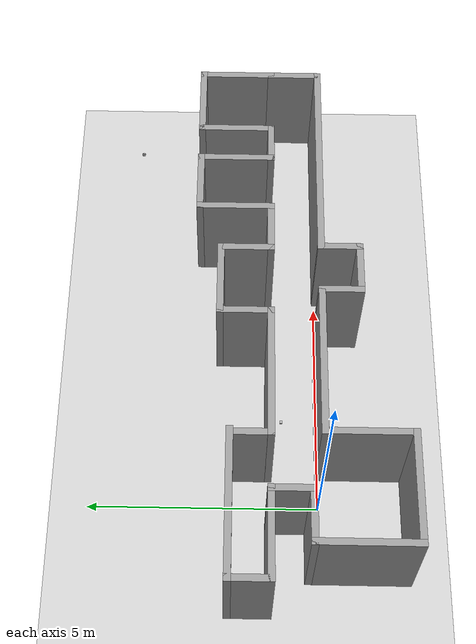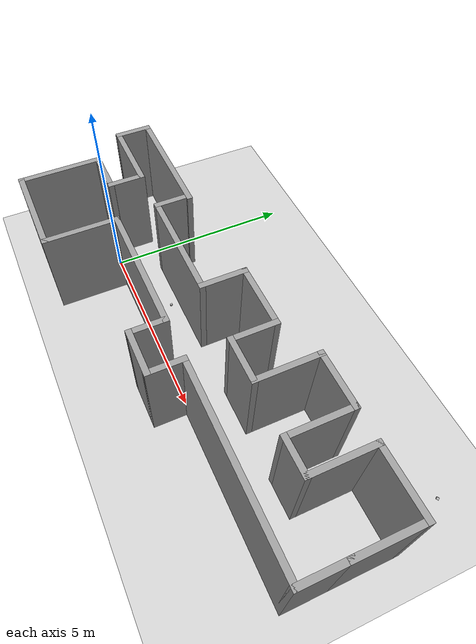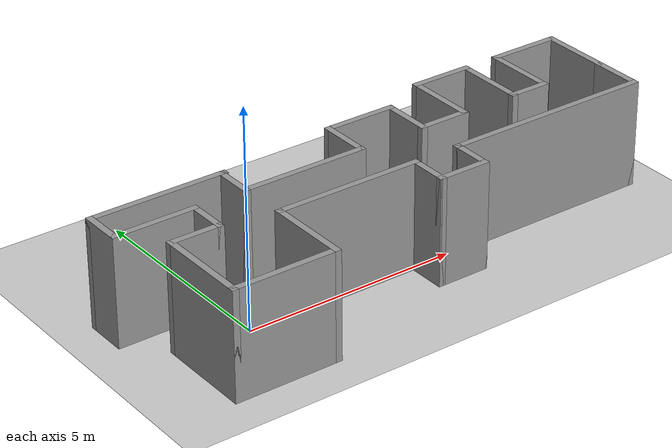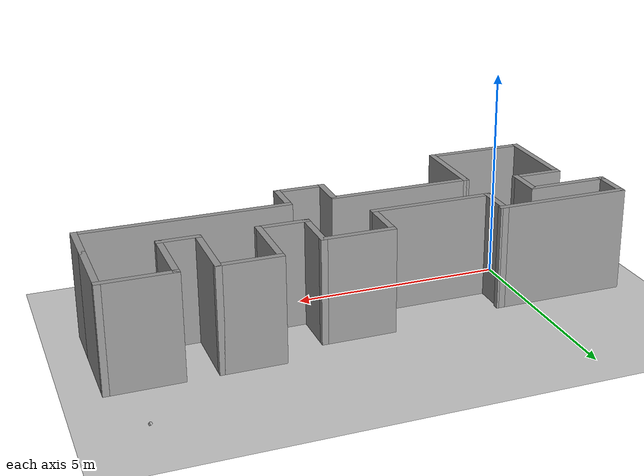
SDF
<sdf version="1.6">
 <world name="default">
  <light name="sun" type="directional">
   <pose>0 0 10 0 -0 0</pose>
   <diffuse>0.8 0.8 0.8 1</diffuse>
   <specular>0.1 0.1 0.1 1</specular>
   <attenuation>
    <range>1000</range>
    <constant>0.9</constant>
    <linear>0.01</linear>
    <quadratic>0.001</quadratic>
   </attenuation>
   <direction>-0.5 0.5 -1</direction>
  </light>
  <model name="ground_plane">
   <static>1</static>
   <link name="link">
    <collision name="collision">
     <geometry><plane><normal>0 0 1</normal><size>100 100</size></plane></geometry>
     <surface><friction><ode><mu>100</mu><mu2>50</mu2></ode></friction></surface>
    </collision>
    <visual name="visual">
     <cast_shadows>0</cast_shadows>
     <geometry><plane><normal>0 0 1</normal><size>100 100</size></plane></geometry>
     <material>
      <script><uri>file://media/materials/scripts/gazebo.material</uri><name>Gazebo/Grey</name></script>
     </material>
    </visual>
   </link>
  </model>
  <gravity>0 0 -9.8</gravity>
  <magnetic_field>6e-06 2.3e-05 -4.2e-05</magnetic_field>
  <atmosphere type="adiabatic"/>
  <physics name="default_physics" default="0" type="ode">
   <max_step_size>0.001</max_step_size>
   <real_time_factor>1</real_time_factor>
   <real_time_update_rate>1000</real_time_update_rate>
  </physics>
  <scene><ambient>0.4 0.4 0.4 1</ambient><background>0.7 0.7 0.7 1</background><shadows>1</shadows></scene>
  <spherical_coordinates>
   <surface_model>EARTH_WGS84</surface_model>
   <latitude_deg>0</latitude_deg>
   <longitude_deg>0</longitude_deg>
   <elevation>0</elevation>
   <heading_deg>0</heading_deg>
  </spherical_coordinates>
  <model name="Yiping_apt">
   <pose>3.8681 0.406021 0 0 -0 0</pose>
   <link name="Wall_0">
    <collision name="Wall_0_Collision">
     <geometry><box><size>3.25 0.15 2.5</size></box></geometry>
     <pose>0 0 1.25 0 -0 0</pose>
    </collision>
    <visual name="Wall_0_Visual">
     <pose>0 0 1.25 0 -0 0</pose>
     <geometry><box><size>3.25 0.15 2.5</size></box></geometry>
     <material>
      <script><uri>file://media/materials/scripts/gazebo.material</uri><name>Gazebo/Grey</name></script>
      <ambient>1 1 1 1</ambient>
     </material>
    </visual>
    <pose>-4.65 1.525 0 0 -0 3.14159</pose>
   </link>
   <link name="Wall_1">
    <collision name="Wall_1_Collision">
     <geometry><box><size>1 0.15 2.5</size></box></geometry>
     <pose>0 0 1.25 0 -0 0</pose>
    </collision>
    <visual name="Wall_1_Visual">
     <pose>0 0 1.25 0 -0 0</pose>
     <geometry><box><size>1 0.15 2.5</size></box></geometry>
     <material>
      <script><uri>file://media/materials/scripts/gazebo.material</uri><name>Gazebo/Grey</name></script>
      <ambient>1 1 1 1</ambient>
     </material>
    </visual>
    <pose>-6.2 1.1 0 0 0 -1.5708</pose>
   </link>
   <link name="Wall_10">
    <collision name="Wall_10_Collision">
     <geometry><box><size>1.25 0.15 2.5</size></box></geometry>
     <pose>0 0 1.25 0 -0 0</pose>
    </collision>
    <visual name="Wall_10_Visual">
     <pose>0 0 1.25 0 -0 0</pose>
     <geometry><box><size>1.25 0.15 2.5</size></box></geometry>
     <material>
      <script><uri>file://media/materials/scripts/gazebo.material</uri><name>Gazebo/Grey</name></script>
      <ambient>1 1 1 1</ambient>
     </material>
    </visual>
    <pose>0.8 -1.275 0 0 -0 0</pose>
   </link>
   <link name="Wall_11">
    <collision name="Wall_11_Collision">
     <geometry><box><size>1 0.15 2.5</size></box></geometry>
     <pose>0 0 1.25 0 -0 0</pose>
    </collision>
    <visual name="Wall_11_Visual">
     <pose>0 0 1.25 0 -0 0</pose>
     <geometry><box><size>1 0.15 2.5</size></box></geometry>
     <material>
      <script><uri>file://media/materials/scripts/gazebo.material</uri><name>Gazebo/Grey</name></script>
      <ambient>1 1 1 1</ambient>
     </material>
    </visual>
    <pose>1.35 -0.85 0 0 -0 1.5708</pose>
   </link>
   <link name="Wall_12">
    <collision name="Wall_12_Collision">
     <geometry><box><size>5 0.15 2.5</size></box></geometry>
     <pose>0 0 1.25 0 -0 0</pose>
    </collision>
    <visual name="Wall_12_Visual">
     <pose>0 0 1.25 0 -0 0</pose>
     <geometry><box><size>5 0.15 2.5</size></box></geometry>
     <material>
      <script><uri>file://media/materials/scripts/gazebo.material</uri><name>Gazebo/Grey</name></script>
      <ambient>1 1 1 1</ambient>
     </material>
    </visual>
    <pose>3.775 -0.425 0 0 -0 0</pose>
   </link>
   <link name="Wall_13">
    <collision name="Wall_13_Collision">
     <geometry><box><size>1.25 0.15 2.5</size></box></geometry>
     <pose>0 0 1.25 0 -0 0</pose>
    </collision>
    <visual name="Wall_13_Visual">
     <pose>0 0 1.25 0 -0 0</pose>
     <geometry><box><size>1.25 0.15 2.5</size></box></geometry>
     <material>
      <script><uri>file://media/materials/scripts/gazebo.material</uri><name>Gazebo/Grey</name></script>
      <ambient>1 1 1 1</ambient>
     </material>
    </visual>
    <pose>6.2 0.125 0 0 -0 1.5708</pose>
   </link>
   <link name="Wall_14">
    <collision name="Wall_14_Collision">
     <geometry><box><size>1.75 0.15 2.5</size></box></geometry>
     <pose>0 0 1.25 0 -0 0</pose>
    </collision>
    <visual name="Wall_14_Visual">
     <pose>0 0 1.25 0 -0 0</pose>
     <geometry><box><size>1.75 0.15 2.5</size></box></geometry>
     <material>
      <script><uri>file://media/materials/scripts/gazebo.material</uri><name>Gazebo/Grey</name></script>
      <ambient>1 1 1 1</ambient>
     </material>
    </visual>
    <pose>6.2 1.475 0 0 -0 1.5708</pose>
   </link>
   <link name="Wall_15">
    <collision name="Wall_15_Collision">
     <geometry><box><size>1.75 0.15 2.5</size></box></geometry>
     <pose>0 0 1.25 0 -0 0</pose>
    </collision>
    <visual name="Wall_15_Visual">
     <pose>0 0 1.25 0 -0 0</pose>
     <geometry><box><size>1.75 0.15 2.5</size></box></geometry>
     <material>
      <script><uri>file://media/materials/scripts/gazebo.material</uri><name>Gazebo/Grey</name></script>
      <ambient>1 1 1 1</ambient>
     </material>
    </visual>
    <pose>5.4 2.275 0 0 -0 3.14159</pose>
   </link>
   <link name="Wall_16">
    <collision name="Wall_16_Collision">
     <geometry><box><size>1.75 0.15 2.5</size></box></geometry>
     <pose>0 0 1.25 0 -0 0</pose>
    </collision>
    <visual name="Wall_16_Visual">
     <pose>0 0 1.25 0 -0 0</pose>
     <geometry><box><size>1.75 0.15 2.5</size></box></geometry>
     <material>
      <script><uri>file://media/materials/scripts/gazebo.material</uri><name>Gazebo/Grey</name></script>
      <ambient>1 1 1 1</ambient>
     </material>
    </visual>
    <pose>4.6 1.475 0 0 0 -1.5708</pose>
   </link>
   <link name="Wall_17">
    <collision name="Wall_17_Collision">
     <geometry><box><size>1 0.15 2.5</size></box></geometry>
     <pose>0 0 1.25 0 -0 0</pose>
    </collision>
    <visual name="Wall_17_Visual">
     <pose>0 0 1.25 0 -0 0</pose>
     <geometry><box><size>1 0.15 2.5</size></box></geometry>
     <material>
      <script><uri>file://media/materials/scripts/gazebo.material</uri><name>Gazebo/Grey</name></script>
      <ambient>1 1 1 1</ambient>
     </material>
    </visual>
    <pose>4.175 0.675 0 0 -0 3.14159</pose>
   </link>
   <link name="Wall_18">
    <collision name="Wall_18_Collision">
     <geometry><box><size>1.75 0.15 2.5</size></box></geometry>
     <pose>0 0 1.25 0 -0 0</pose>
    </collision>
    <visual name="Wall_18_Visual">
     <pose>0 0 1.25 0 -0 0</pose>
     <geometry><box><size>1.75 0.15 2.5</size></box></geometry>
     <material>
      <script><uri>file://media/materials/scripts/gazebo.material</uri><name>Gazebo/Grey</name></script>
      <ambient>1 1 1 1</ambient>
     </material>
    </visual>
    <pose>3.75 1.475 0 0 -0 1.5708</pose>
   </link>
   <link name="Wall_19">
    <collision name="Wall_19_Collision">
     <geometry><box><size>1.5 0.15 2.5</size></box></geometry>
     <pose>0 0 1.25 0 -0 0</pose>
    </collision>
    <visual name="Wall_19_Visual">
     <pose>0 0 1.25 0 -0 0</pose>
     <geometry><box><size>1.5 0.15 2.5</size></box></geometry>
     <material>
      <script><uri>file://media/materials/scripts/gazebo.material</uri><name>Gazebo/Grey</name></script>
      <ambient>1 1 1 1</ambient>
     </material>
    </visual>
    <pose>3.075 2.275 0 0 -0 3.14159</pose>
   </link>
   <link name="Wall_2">
    <collision name="Wall_2_Collision">
     <geometry><box><size>2 0.15 2.5</size></box></geometry>
     <pose>0 0 1.25 0 -0 0</pose>
    </collision>
    <visual name="Wall_2_Visual">
     <pose>0 0 1.25 0 -0 0</pose>
     <geometry><box><size>2 0.15 2.5</size></box></geometry>
     <material>
      <script><uri>file://media/materials/scripts/gazebo.material</uri><name>Gazebo/Grey</name></script>
      <ambient>1 1 1 1</ambient>
     </material>
    </visual>
    <pose>-5.275 0.675 0 0 -0 0</pose>
   </link>
   <link name="Wall_20">
    <collision name="Wall_20_Collision">
     <geometry><box><size>1.75 0.15 2.5</size></box></geometry>
     <pose>0 0 1.25 0 -0 0</pose>
    </collision>
    <visual name="Wall_20_Visual">
     <pose>0 0 1.25 0 -0 0</pose>
     <geometry><box><size>1.75 0.15 2.5</size></box></geometry>
     <material>
      <script><uri>file://media/materials/scripts/gazebo.material</uri><name>Gazebo/Grey</name></script>
      <ambient>1 1 1 1</ambient>
     </material>
    </visual>
    <pose>2.4 1.475 0 0 0 -1.5708</pose>
   </link>
   <link name="Wall_21">
    <collision name="Wall_21_Collision">
     <geometry><box><size>1.25 0.15 2.5</size></box></geometry>
     <pose>0 0 1.25 0 -0 0</pose>
    </collision>
    <visual name="Wall_21_Visual">
     <pose>0 0 1.25 0 -0 0</pose>
     <geometry><box><size>1.25 0.15 2.5</size></box></geometry>
     <material>
      <script><uri>file://media/materials/scripts/gazebo.material</uri><name>Gazebo/Grey</name></script>
      <ambient>1 1 1 1</ambient>
     </material>
    </visual>
    <pose>1.85 0.675 0 0 -0 3.14159</pose>
   </link>
   <link name="Wall_22">
    <collision name="Wall_22_Collision">
     <geometry><box><size>1.25 0.15 2.5</size></box></geometry>
     <pose>0 0 1.25 0 -0 0</pose>
    </collision>
    <visual name="Wall_22_Visual">
     <pose>0 0 1.25 0 -0 0</pose>
     <geometry><box><size>1.25 0.15 2.5</size></box></geometry>
     <material>
      <script><uri>file://media/materials/scripts/gazebo.material</uri><name>Gazebo/Grey</name></script>
      <ambient>1 1 1 1</ambient>
     </material>
    </visual>
    <pose>1.3 1.225 0 0 -0 1.5708</pose>
   </link>
   <link name="Wall_23">
    <collision name="Wall_23_Collision">
     <geometry><box><size>1.75 0.15 2.5</size></box></geometry>
     <pose>0 0 1.25 0 -0 0</pose>
    </collision>
    <visual name="Wall_23_Visual">
     <pose>0 0 1.25 0 -0 0</pose>
     <geometry><box><size>1.75 0.15 2.5</size></box></geometry>
     <material>
      <script><uri>file://media/materials/scripts/gazebo.material</uri><name>Gazebo/Grey</name></script>
      <ambient>1 1 1 1</ambient>
     </material>
    </visual>
    <pose>0.5 1.775 0 0 -0 3.14159</pose>
   </link>
   <link name="Wall_24">
    <collision name="Wall_24_Collision">
     <geometry><box><size>1.25 0.15 2.5</size></box></geometry>
     <pose>0 0 1.25 0 -0 0</pose>
    </collision>
    <visual name="Wall_24_Visual">
     <pose>0 0 1.25 0 -0 0</pose>
     <geometry><box><size>1.25 0.15 2.5</size></box></geometry>
     <material>
      <script><uri>file://media/materials/scripts/gazebo.material</uri><name>Gazebo/Grey</name></script>
      <ambient>1 1 1 1</ambient>
     </material>
    </visual>
    <pose>-0.3 1.225 0 0 0 -1.5708</pose>
   </link>
   <link name="Wall_25">
    <collision name="Wall_25_Collision">
     <geometry><box><size>3 0.15 2.5</size></box></geometry>
     <pose>0 0 1.25 0 -0 0</pose>
    </collision>
    <visual name="Wall_25_Visual">
     <pose>0 0 1.25 0 -0 0</pose>
     <geometry><box><size>3 0.15 2.5</size></box></geometry>
     <material>
      <script><uri>file://media/materials/scripts/gazebo.material</uri><name>Gazebo/Grey</name></script>
      <ambient>1 1 1 1</ambient>
     </material>
    </visual>
    <pose>-1.725 0.675 0 0 -0 3.14159</pose>
   </link>
   <link name="Wall_26">
    <collision name="Wall_26_Collision">
     <geometry><box><size>1 0.15 2.5</size></box></geometry>
     <pose>0 0 1.25 0 -0 0</pose>
    </collision>
    <visual name="Wall_26_Visual">
     <pose>0 0 1.25 0 -0 0</pose>
     <geometry><box><size>1 0.15 2.5</size></box></geometry>
     <material>
      <script><uri>file://media/materials/scripts/gazebo.material</uri><name>Gazebo/Grey</name></script>
      <ambient>1 1 1 1</ambient>
     </material>
    </visual>
    <pose>-3.15 1.1 0 0 -0 1.5708</pose>
   </link>
   <link name="Wall_3">
    <collision name="Wall_3_Collision">
     <geometry><box><size>1 0.15 2.5</size></box></geometry>
     <pose>0 0 1.25 0 -0 0</pose>
    </collision>
    <visual name="Wall_3_Visual">
     <pose>0 0 1.25 0 -0 0</pose>
     <geometry><box><size>1 0.15 2.5</size></box></geometry>
     <material>
      <script><uri>file://media/materials/scripts/gazebo.material</uri><name>Gazebo/Grey</name></script>
      <ambient>1 1 1 1</ambient>
     </material>
    </visual>
    <pose>-4.35 0.25 0 0 0 -1.5708</pose>
   </link>
   <link name="Wall_4">
    <collision name="Wall_4_Collision">
     <geometry><box><size>1.25 0.15 2.5</size></box></geometry>
     <pose>0 0 1.25 0 -0 0</pose>
    </collision>
    <visual name="Wall_4_Visual">
     <pose>0 0 1.25 0 -0 0</pose>
     <geometry><box><size>1.25 0.15 2.5</size></box></geometry>
     <material>
      <script><uri>file://media/materials/scripts/gazebo.material</uri><name>Gazebo/Grey</name></script>
      <ambient>1 1 1 1</ambient>
     </material>
    </visual>
    <pose>-4.9 -0.175 0 0 -0 3.14159</pose>
   </link>
   <link name="Wall_5">
    <collision name="Wall_5_Collision">
     <geometry><box><size>2.25 0.15 2.5</size></box></geometry>
     <pose>0 0 1.25 0 -0 0</pose>
    </collision>
    <visual name="Wall_5_Visual">
     <pose>0 0 1.25 0 -0 0</pose>
     <geometry><box><size>2.25 0.15 2.5</size></box></geometry>
     <material>
      <script><uri>file://media/materials/scripts/gazebo.material</uri><name>Gazebo/Grey</name></script>
      <ambient>1 1 1 1</ambient>
     </material>
    </visual>
    <pose>-5.45 -1.225 0 0 0 -1.5708</pose>
   </link>
   <link name="Wall_6">
    <collision name="Wall_6_Collision">
     <geometry><box><size>2.5 0.15 2.5</size></box></geometry>
     <pose>0 0 1.25 0 -0 0</pose>
    </collision>
    <visual name="Wall_6_Visual">
     <pose>0 0 1.25 0 -0 0</pose>
     <geometry><box><size>2.5 0.15 2.5</size></box></geometry>
     <material>
      <script><uri>file://media/materials/scripts/gazebo.material</uri><name>Gazebo/Grey</name></script>
      <ambient>1 1 1 1</ambient>
     </material>
    </visual>
    <pose>-4.275 -2.275 0 0 -0 0</pose>
   </link>
   <link name="Wall_7">
    <collision name="Wall_7_Collision">
     <geometry><box><size>2 0.15 2.5</size></box></geometry>
     <pose>0 0 1.25 0 -0 0</pose>
    </collision>
    <visual name="Wall_7_Visual">
     <pose>0 0 1.25 0 -0 0</pose>
     <geometry><box><size>2 0.15 2.5</size></box></geometry>
     <material>
      <script><uri>file://media/materials/scripts/gazebo.material</uri><name>Gazebo/Grey</name></script>
      <ambient>1 1 1 1</ambient>
     </material>
    </visual>
    <pose>-3.1 -1.35 0 0 -0 1.5708</pose>
   </link>
   <link name="Wall_8">
    <collision name="Wall_8_Collision">
     <geometry><box><size>3.5 0.15 2.5</size></box></geometry>
     <pose>0 0 1.25 0 -0 0</pose>
    </collision>
    <visual name="Wall_8_Visual">
     <pose>0 0 1.25 0 -0 0</pose>
     <geometry><box><size>3.5 0.15 2.5</size></box></geometry>
     <material>
      <script><uri>file://media/materials/scripts/gazebo.material</uri><name>Gazebo/Grey</name></script>
      <ambient>1 1 1 1</ambient>
     </material>
    </visual>
    <pose>-1.425 -0.425 0 0 -0 0</pose>
   </link>
   <link name="Wall_9">
    <collision name="Wall_9_Collision">
     <geometry><box><size>1 0.15 2.5</size></box></geometry>
     <pose>0 0 1.25 0 -0 0</pose>
    </collision>
    <visual name="Wall_9_Visual">
     <pose>0 0 1.25 0 -0 0</pose>
     <geometry><box><size>1 0.15 2.5</size></box></geometry>
     <material>
      <script><uri>file://media/materials/scripts/gazebo.material</uri><name>Gazebo/Grey</name></script>
      <ambient>1 1 1 1</ambient>
     </material>
    </visual>
    <pose>0.25 -0.85 0 0 0 -1.5708</pose>
   </link>
   <static>1</static>
  </model>
  <model name="my_model_0">
   <pose>2.06471 0.780521 0.056 -2e-06 1e-06 0.000441</pose>
   <static>0</static>
   <link name="link">
    <inertial>
     <mass>0.01</mass>
     <inertia><ixx>0.083</ixx><ixy>0</ixy><ixz>0</ixz><iyy>0.083</iyy><iyz>0</iyz><izz>0.083</izz></inertia>
    </inertial>
    <collision name="collision">
     <geometry><mesh><uri>model://aruco_cube/meshes/aruco_cube.dae</uri><scale>1 1 1</scale></mesh></geometry>
    </collision>
    <visual name="visual">
     <geometry><mesh><uri>model://aruco_cube/meshes/aruco_cube.dae</uri><scale>1 1 1</scale></mesh></geometry>
    </visual>
   </link>
  </model>
  <model name="my_model_2">
   <pose>9.4821 4.22815 0.084525 1.87916 1.02045 2.5194</pose>
   <static>0</static>
   <link name="link">
    <inertial>
     <mass>0.01</mass>
     <inertia><ixx>0.083</ixx><ixy>0</ixy><ixz>0</ixz><iyy>0.083</iyy><iyz>0</iyz><izz>0.083</izz></inertia>
    </inertial>
    <collision name="collision">
     <geometry><mesh><uri>model://aruco_cube/meshes/aruco_cube.dae</uri><scale>1 1 1</scale></mesh></geometry>
    </collision>
    <visual name="visual">
     <geometry><mesh><uri>model://aruco_cube/meshes/aruco_cube.dae</uri><scale>1 1 1</scale></mesh></geometry>
    </visual>
   </link>
  </model>
 </world>
</sdf>
